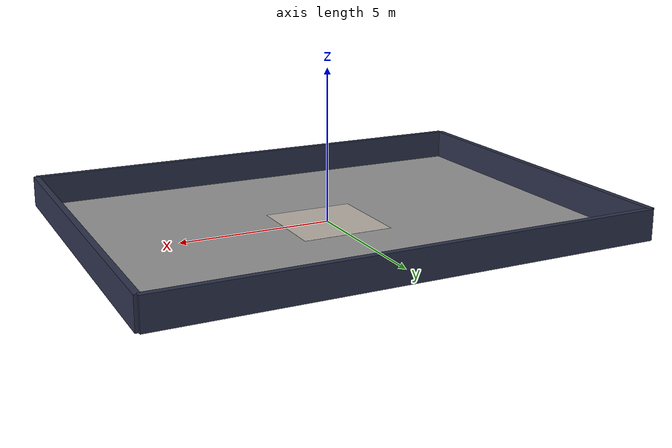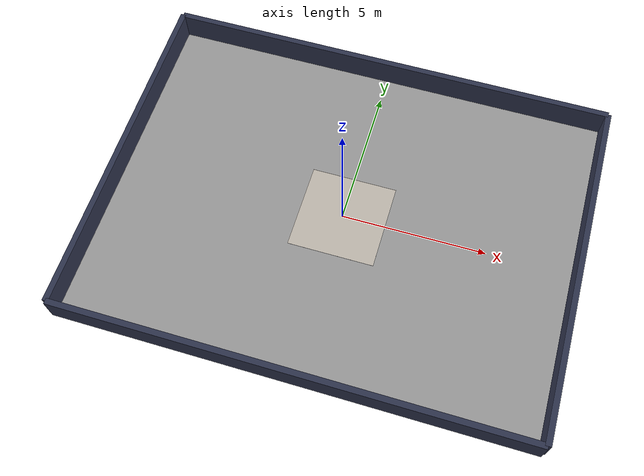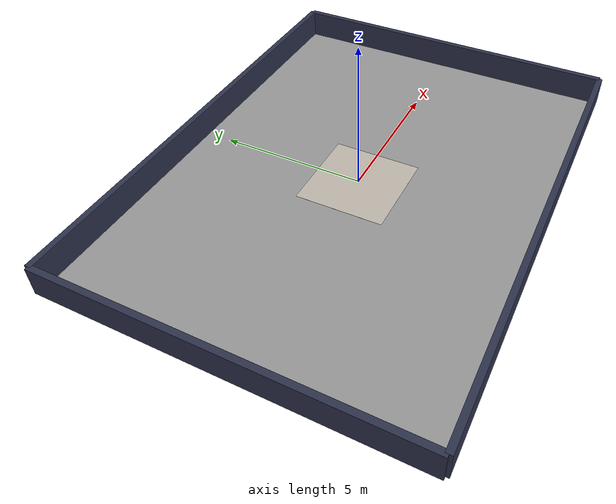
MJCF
<mujoco model="factory_hall_logo_fixed">
    <option timestep="0.001" gravity="0 0 -9.81"
            integrator="RK4" solver="PGS" />

    <visual>
        <headlight diffuse="0.6 0.6 0.6" ambient="0.3 0.3 0.3" />

        <rgba fog="0.10 0.12 0.14 1" />

        <global azimuth="120" elevation="-20" />
    </visual>

    <asset>
        <texture type="skybox" builtin="gradient"
                 rgb1="0.05 0.08 0.12" rgb2="0.25 0.27 0.30"
                 width="512" height="3072" />

        <material name="floor_mat" rgba="0.6 0.6 0.6 1" reflectance="0.3" />

        <texture name="kmu_logo_tex" type="2d" file="Signature_KMU.png" />

        <material name="logo_mat" texture="kmu_logo_tex" texuniform="true" />
    </asset>

    <worldbody>
        <light pos="0 0 8" dir="0 0 -1" directional="true" />

        <geom name="floor_base" type="plane" size="8 6 0.05" material="floor_mat" />

        <geom name="floor_logo" type="box" pos="0 0 0.001" size="1.5 1.5 0.0005" material="logo_mat" />

        <geom name="wall_front" type="box" pos="0 6 0.5" size="8 0.1 0.5" rgba="0.18 0.20 0.3 1" />

        <geom name="wall_back" type="box" pos="0 -6 0.5" size="8 0.1 0.5" rgba="0.18 0.20 0.3 1" />

        <geom name="wall_left" type="box" pos="-8 0 0.5" size="0.1 6 0.5" rgba="0.18 0.20 0.3 1" />

        <geom name="wall_right" type="box" pos="8 0 0.5" size="0.1 6 0.5" rgba="0.18 0.20 0.3 1" />
    </worldbody>
</mujoco>
